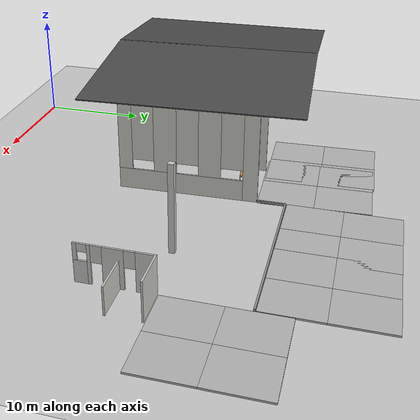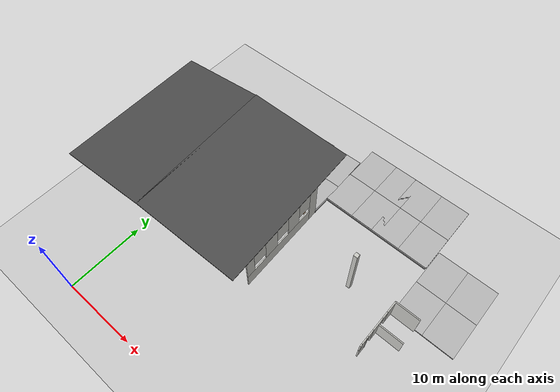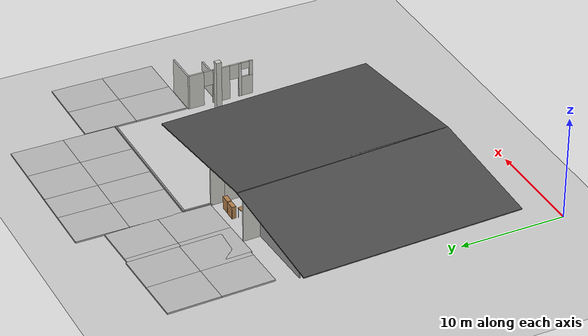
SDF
<sdf version="1.7">
 <world name="default">
  <model name="ground_plane">
   <static>1</static>
   <link name="link">
    <collision name="collision">
     <geometry><plane><normal>0 0 1</normal><size>100 100</size></plane></geometry>
     <surface><friction><ode><mu>100</mu><mu2>50</mu2></ode></friction></surface>
    </collision>
    <visual name="visual">
     <cast_shadows>0</cast_shadows>
     <geometry><plane><normal>0 0 1</normal><size>100 100</size></plane></geometry>
     <material>
      <script><uri>file://media/materials/scripts/gazebo.material</uri><name>Gazebo/Grey</name></script>
     </material>
    </visual>
   </link>
  </model>
  <model name="vehicle_test1">
   <pose>1.6419 -2.1357 0 0 -0 0</pose>
   <link name="Wall_0">
    <pose>13.4971 22.2982 0 0 -0 -1.53906</pose>
    <visual name="Wall_0_Visual_0">
     <pose>-5.69686 0 4.5 0 -0 0</pose>
     <geometry><box><size>1.36263 0.15 9</size></box></geometry>
     <material>
      <script><uri>file://media/materials/scripts/gazebo.material</uri><name>Gazebo/CeilingTiled</name></script>
      <ambient>1 1 1 1</ambient>
     </material>
     <meta><layer>0</layer></meta>
    </visual>
    <collision name="Wall_0_Collision_0">
     <geometry><box><size>1.36263 0.15 9</size></box></geometry>
     <pose>-5.69686 0 4.5 0 -0 0</pose>
    </collision>
    <visual name="Wall_0_Visual_1">
     <pose>0.681317 0 1 0 -0 0</pose>
     <geometry><box><size>11.3937 0.15 2</size></box></geometry>
     <material>
      <script><uri>file://media/materials/scripts/gazebo.material</uri><name>Gazebo/CeilingTiled</name></script>
      <ambient>1 1 1 1</ambient>
     </material>
     <meta><layer>0</layer></meta>
    </visual>
    <collision name="Wall_0_Collision_1">
     <geometry><box><size>11.3937 0.15 2</size></box></geometry>
     <pose>0.681317 0 1 0 -0 0</pose>
    </collision>
    <visual name="Wall_0_Visual_2">
     <pose>-1.99597 0 5.5 0 -0 0</pose>
     <geometry><box><size>2.03913 0.15 7</size></box></geometry>
     <material>
      <script><uri>file://media/materials/scripts/gazebo.material</uri><name>Gazebo/CeilingTiled</name></script>
      <ambient>1 1 1 1</ambient>
     </material>
     <meta><layer>0</layer></meta>
    </visual>
    <collision name="Wall_0_Collision_2">
     <geometry><box><size>2.03913 0.15 7</size></box></geometry>
     <pose>-1.99597 0 5.5 0 -0 0</pose>
    </collision>
    <visual name="Wall_0_Visual_3">
     <pose>2.07219 0 5.5 0 -0 0</pose>
     <geometry><box><size>2.09719 0.15 7</size></box></geometry>
     <material>
      <script><uri>file://media/materials/scripts/gazebo.material</uri><name>Gazebo/CeilingTiled</name></script>
      <ambient>1 1 1 1</ambient>
     </material>
     <meta><layer>0</layer></meta>
    </visual>
    <collision name="Wall_0_Collision_3">
     <geometry><box><size>2.09719 0.15 7</size></box></geometry>
     <pose>2.07219 0 5.5 0 -0 0</pose>
    </collision>
    <visual name="Wall_0_Visual_4">
     <pose>5.74948 0 5.5 0 -0 0</pose>
     <geometry><box><size>1.25739 0.15 7</size></box></geometry>
     <material>
      <script><uri>file://media/materials/scripts/gazebo.material</uri><name>Gazebo/CeilingTiled</name></script>
      <ambient>1 1 1 1</ambient>
     </material>
     <meta><layer>0</layer></meta>
    </visual>
    <collision name="Wall_0_Collision_4">
     <geometry><box><size>1.25739 0.15 7</size></box></geometry>
     <pose>5.74948 0 5.5 0 -0 0</pose>
    </collision>
    <visual name="Wall_0_Visual_5">
     <pose>-4.01554 0 6 0 -0 0</pose>
     <geometry><box><size>2 0.15 6</size></box></geometry>
     <material>
      <script><uri>file://media/materials/scripts/gazebo.material</uri><name>Gazebo/CeilingTiled</name></script>
      <ambient>1 1 1 1</ambient>
     </material>
     <meta><layer>0</layer></meta>
    </visual>
    <collision name="Wall_0_Collision_5">
     <geometry><box><size>2 0.15 6</size></box></geometry>
     <pose>-4.01554 0 6 0 -0 0</pose>
    </collision>
    <visual name="Wall_0_Visual_6">
     <pose>0.023594 0 6 0 -0 0</pose>
     <geometry><box><size>2 0.15 6</size></box></geometry>
     <material>
      <script><uri>file://media/materials/scripts/gazebo.material</uri><name>Gazebo/CeilingTiled</name></script>
      <ambient>1 1 1 1</ambient>
     </material>
     <meta><layer>0</layer></meta>
    </visual>
    <collision name="Wall_0_Collision_6">
     <geometry><box><size>2 0.15 6</size></box></geometry>
     <pose>0.023594 0 6 0 -0 0</pose>
    </collision>
    <visual name="Wall_0_Visual_7">
     <pose>4.12079 0 6 0 -0 0</pose>
     <geometry><box><size>2 0.15 6</size></box></geometry>
     <material>
      <script><uri>file://media/materials/scripts/gazebo.material</uri><name>Gazebo/CeilingTiled</name></script>
      <ambient>1 1 1 1</ambient>
     </material>
     <meta><layer>0</layer></meta>
    </visual>
    <collision name="Wall_0_Collision_7">
     <geometry><box><size>2 0.15 6</size></box></geometry>
     <pose>4.12079 0 6 0 -0 0</pose>
    </collision>
   </link>
   <link name="Wall_45">
    <collision name="Wall_45_Collision">
     <geometry><box><size>0.51 0.5 8</size></box></geometry>
     <pose>0 0 4 0 -0 0</pose>
    </collision>
    <visual name="Wall_45_Visual">
     <pose>0 0 4 0 -0 0</pose>
     <geometry><box><size>0.51 0.5 8</size></box></geometry>
     <material>
      <script><uri>file://media/materials/scripts/gazebo.material</uri><name>Gazebo/CeilingTiled</name></script>
      <ambient>1 1 1 1</ambient>
     </material>
     <meta><layer>0</layer></meta>
    </visual>
    <pose>22.6591 23.5312 0 0 -0 -1.5708</pose>
   </link>
   <link name="Wall_79">
    <pose>7.4221 22.1092 0 0 -0 1.60295</pose>
    <visual name="Wall_79_Visual_0">
     <pose>-4.87221 0 4.35 0 -0 0</pose>
     <geometry><box><size>2.91204 0.15 8.7</size></box></geometry>
     <material>
      <script><uri>file://media/materials/scripts/gazebo.material</uri><name>Gazebo/CeilingTiled</name></script>
      <ambient>1 1 1 1</ambient>
     </material>
     <meta><layer>0</layer></meta>
    </visual>
    <collision name="Wall_79_Collision_0">
     <geometry><box><size>2.91204 0.15 8.7</size></box></geometry>
     <pose>-4.87221 0 4.35 0 -0 0</pose>
    </collision>
    <visual name="Wall_79_Visual_1">
     <pose>5.2833 0 4.35 0 -0 0</pose>
     <geometry><box><size>2.08986 0.15 8.7</size></box></geometry>
     <material>
      <script><uri>file://media/materials/scripts/gazebo.material</uri><name>Gazebo/CeilingTiled</name></script>
      <ambient>1 1 1 1</ambient>
     </material>
     <meta><layer>0</layer></meta>
    </visual>
    <collision name="Wall_79_Collision_1">
     <geometry><box><size>2.08986 0.15 8.7</size></box></geometry>
     <pose>5.2833 0 4.35 0 -0 0</pose>
    </collision>
    <visual name="Wall_79_Visual_2">
     <pose>-0.038905 0 2.5 0 -0 0</pose>
     <geometry><box><size>6.75456 0.15 5</size></box></geometry>
     <material>
      <script><uri>file://media/materials/scripts/gazebo.material</uri><name>Gazebo/CeilingTiled</name></script>
      <ambient>1 1 1 1</ambient>
     </material>
     <meta><layer>0</layer></meta>
    </visual>
    <collision name="Wall_79_Collision_2">
     <geometry><box><size>6.75456 0.15 5</size></box></geometry>
     <pose>-0.038905 0 2.5 0 -0 0</pose>
    </collision>
    <visual name="Wall_79_Visual_3">
     <pose>3.78838 0 0 0 -0 0</pose>
     <geometry><box><size>0.9 0.15 0</size></box></geometry>
     <material>
      <script><uri>file://media/materials/scripts/gazebo.material</uri><name>Gazebo/CeilingTiled</name></script>
      <ambient>1 1 1 1</ambient>
     </material>
     <meta><layer>0</layer></meta>
    </visual>
    <collision name="Wall_79_Collision_3">
     <geometry><box><size>0.9 0.15 0</size></box></geometry>
     <pose>3.78838 0 0 0 -0 0</pose>
    </collision>
    <visual name="Wall_79_Visual_4">
     <pose>3.78838 0 5.35 0 -0 0</pose>
     <geometry><box><size>0.9 0.15 6.7</size></box></geometry>
     <material>
      <script><uri>file://media/materials/scripts/gazebo.material</uri><name>Gazebo/CeilingTiled</name></script>
      <ambient>1 1 1 1</ambient>
     </material>
     <meta><layer>0</layer></meta>
    </visual>
    <collision name="Wall_79_Collision_4">
     <geometry><box><size>0.9 0.15 6.7</size></box></geometry>
     <pose>3.78838 0 5.35 0 -0 0</pose>
    </collision>
    <visual name="Wall_79_Visual_5">
     <pose>-0.34308 0 6.85 0 -0 0</pose>
     <geometry><box><size>2.14621 0.15 3.7</size></box></geometry>
     <material>
      <script><uri>file://media/materials/scripts/gazebo.material</uri><name>Gazebo/CeilingTiled</name></script>
      <ambient>1 1 1 1</ambient>
     </material>
     <meta><layer>0</layer></meta>
    </visual>
    <collision name="Wall_79_Collision_5">
     <geometry><box><size>2.14621 0.15 3.7</size></box></geometry>
     <pose>-0.34308 0 6.85 0 -0 0</pose>
    </collision>
    <visual name="Wall_79_Visual_6">
     <pose>3.0342 0 6.85 0 -0 0</pose>
     <geometry><box><size>0.608351 0.15 3.7</size></box></geometry>
     <material>
      <script><uri>file://media/materials/scripts/gazebo.material</uri><name>Gazebo/CeilingTiled</name></script>
      <ambient>1 1 1 1</ambient>
     </material>
     <meta><layer>0</layer></meta>
    </visual>
    <collision name="Wall_79_Collision_6">
     <geometry><box><size>0.608351 0.15 3.7</size></box></geometry>
     <pose>3.0342 0 6.85 0 -0 0</pose>
    </collision>
    <visual name="Wall_79_Visual_7">
     <pose>-2.41619 0 7.85 0 -0 0</pose>
     <geometry><box><size>2 0.15 1.7</size></box></geometry>
     <material>
      <script><uri>file://media/materials/scripts/gazebo.material</uri><name>Gazebo/CeilingTiled</name></script>
      <ambient>1 1 1 1</ambient>
     </material>
     <meta><layer>0</layer></meta>
    </visual>
    <collision name="Wall_79_Collision_7">
     <geometry><box><size>2 0.15 1.7</size></box></geometry>
     <pose>-2.41619 0 7.85 0 -0 0</pose>
    </collision>
    <visual name="Wall_79_Visual_8">
     <pose>1.73003 0 7.85 0 -0 0</pose>
     <geometry><box><size>2 0.15 1.7</size></box></geometry>
     <material>
      <script><uri>file://media/materials/scripts/gazebo.material</uri><name>Gazebo/CeilingTiled</name></script>
      <ambient>1 1 1 1</ambient>
     </material>
     <meta><layer>0</layer></meta>
    </visual>
    <collision name="Wall_79_Collision_8">
     <geometry><box><size>2 0.15 1.7</size></box></geometry>
     <pose>1.73003 0 7.85 0 -0 0</pose>
    </collision>
   </link>
   <link name="Wall_82">
    <collision name="Wall_82_Collision">
     <geometry><box><size>7.05652 0.15 5</size></box></geometry>
     <pose>0 0 2.5 0 -0 0</pose>
    </collision>
    <visual name="Wall_82_Visual">
     <pose>0 0 2.5 0 -0 0</pose>
     <geometry><box><size>7.05652 0.15 5</size></box></geometry>
     <material>
      <script><uri>file://media/materials/scripts/gazebo.material</uri><name>Gazebo/Grey</name></script>
      <ambient>1 1 1 1</ambient>
     </material>
     <meta><layer>0</layer></meta>
    </visual>
    <pose>3.8461 26.5822 0 0 -0 -3.09814</pose>
   </link>
   <link name="Wall_86">
    <pose>28.2431 20.7862 0 0 -0 -1.5708</pose>
    <visual name="Wall_86_Visual_0">
     <pose>-2.44512 0 1.75 0 -0 0</pose>
     <geometry><box><size>1.60975 0.15 3.5</size></box></geometry>
     <material>
      <script><uri>file://media/materials/scripts/gazebo.material</uri><name>Gazebo/CeilingTiled</name></script>
      <ambient>0.760784 0.662745 0.627451 1</ambient>
     </material>
     <meta><layer>0</layer></meta>
    </visual>
    <collision name="Wall_86_Collision_0">
     <geometry><box><size>1.60975 0.15 3.5</size></box></geometry>
     <pose>-2.44512 0 1.75 0 -0 0</pose>
    </collision>
    <visual name="Wall_86_Visual_1">
     <pose>0.10383 0 1.75 0 -0 0</pose>
     <geometry><box><size>1.68816 0.15 3.5</size></box></geometry>
     <material>
      <script><uri>file://media/materials/scripts/gazebo.material</uri><name>Gazebo/CeilingTiled</name></script>
      <ambient>0.760784 0.662745 0.627451 1</ambient>
     </material>
     <meta><layer>0</layer></meta>
    </visual>
    <collision name="Wall_86_Collision_1">
     <geometry><box><size>1.68816 0.15 3.5</size></box></geometry>
     <pose>0.10383 0 1.75 0 -0 0</pose>
    </collision>
    <visual name="Wall_86_Visual_2">
     <pose>1.98308 0 1.75 0 -0 0</pose>
     <geometry><box><size>0.270348 0.15 3.5</size></box></geometry>
     <material>
      <script><uri>file://media/materials/scripts/gazebo.material</uri><name>Gazebo/CeilingTiled</name></script>
      <ambient>0.760784 0.662745 0.627451 1</ambient>
     </material>
     <meta><layer>0</layer></meta>
    </visual>
    <collision name="Wall_86_Collision_2">
     <geometry><box><size>0.270348 0.15 3.5</size></box></geometry>
     <pose>1.98308 0 1.75 0 -0 0</pose>
    </collision>
    <visual name="Wall_86_Visual_3">
     <pose>2.68413 0 1 0 -0 0</pose>
     <geometry><box><size>1.13174 0.15 2</size></box></geometry>
     <material>
      <script><uri>file://media/materials/scripts/gazebo.material</uri><name>Gazebo/CeilingTiled</name></script>
      <ambient>0.760784 0.662745 0.627451 1</ambient>
     </material>
     <meta><layer>0</layer></meta>
    </visual>
    <collision name="Wall_86_Collision_3">
     <geometry><box><size>1.13174 0.15 2</size></box></geometry>
     <pose>2.68413 0 1 0 -0 0</pose>
    </collision>
    <visual name="Wall_86_Visual_4">
     <pose>-1.19025 0 2.75 0 -0 0</pose>
     <geometry><box><size>0.9 0.15 1.5</size></box></geometry>
     <material>
      <script><uri>file://media/materials/scripts/gazebo.material</uri><name>Gazebo/CeilingTiled</name></script>
      <ambient>0.760784 0.662745 0.627451 1</ambient>
     </material>
     <meta><layer>0</layer></meta>
    </visual>
    <collision name="Wall_86_Collision_4">
     <geometry><box><size>0.9 0.15 1.5</size></box></geometry>
     <pose>-1.19025 0 2.75 0 -0 0</pose>
    </collision>
    <visual name="Wall_86_Visual_5">
     <pose>1.39791 0 2.75 0 -0 0</pose>
     <geometry><box><size>0.9 0.15 1.5</size></box></geometry>
     <material>
      <script><uri>file://media/materials/scripts/gazebo.material</uri><name>Gazebo/CeilingTiled</name></script>
      <ambient>0.760784 0.662745 0.627451 1</ambient>
     </material>
     <meta><layer>0</layer></meta>
    </visual>
    <collision name="Wall_86_Collision_5">
     <geometry><box><size>0.9 0.15 1.5</size></box></geometry>
     <pose>1.39791 0 2.75 0 -0 0</pose>
    </collision>
    <visual name="Wall_86_Visual_6">
     <pose>3.08413 0 2.75 0 -0 0</pose>
     <geometry><box><size>0.331741 0.15 1.5</size></box></geometry>
     <material>
      <script><uri>file://media/materials/scripts/gazebo.material</uri><name>Gazebo/CeilingTiled</name></script>
      <ambient>0.760784 0.662745 0.627451 1</ambient>
     </material>
     <meta><layer>0</layer></meta>
    </visual>
    <collision name="Wall_86_Collision_6">
     <geometry><box><size>0.331741 0.15 1.5</size></box></geometry>
     <pose>3.08413 0 2.75 0 -0 0</pose>
    </collision>
    <visual name="Wall_86_Visual_7">
     <pose>2.51826 0 3.15 0 -0 0</pose>
     <geometry><box><size>0.8 0.15 0.7</size></box></geometry>
     <material>
      <script><uri>file://media/materials/scripts/gazebo.material</uri><name>Gazebo/CeilingTiled</name></script>
      <ambient>0.760784 0.662745 0.627451 1</ambient>
     </material>
     <meta><layer>0</layer></meta>
    </visual>
    <collision name="Wall_86_Collision_7">
     <geometry><box><size>0.8 0.15 0.7</size></box></geometry>
     <pose>2.51826 0 3.15 0 -0 0</pose>
    </collision>
   </link>
   <link name="Wall_89">
    <collision name="Wall_89_Collision">
     <geometry><box><size>3.25 0.15 3.5</size></box></geometry>
     <pose>0 0 1.75 0 -0 0</pose>
    </collision>
    <visual name="Wall_89_Visual">
     <pose>0 0 1.75 0 -0 0</pose>
     <geometry><box><size>3.25 0.15 3.5</size></box></geometry>
     <material>
      <script><uri>file://media/materials/scripts/gazebo.material</uri><name>Gazebo/CeilingTiled</name></script>
      <ambient>0.760784 0.662745 0.627451 1</ambient>
     </material>
     <meta><layer>0</layer></meta>
    </visual>
    <pose>29.7931 23.9612 0 0 -0 3.14159</pose>
   </link>
   <link name="Wall_91">
    <collision name="Wall_91_Collision">
     <geometry><box><size>3.25 0.15 2.5</size></box></geometry>
     <pose>0 0 1.25 0 -0 0</pose>
    </collision>
    <visual name="Wall_91_Visual">
     <pose>0 0 1.25 0 -0 0</pose>
     <geometry><box><size>3.25 0.15 2.5</size></box></geometry>
     <material>
      <script><uri>file://media/materials/scripts/gazebo.material</uri><name>Gazebo/CeilingTiled</name></script>
      <ambient>1 1 1 1</ambient>
     </material>
     <meta><layer>0</layer></meta>
    </visual>
    <pose>29.7996 21.0895 0 0 -0 0</pose>
   </link>
   <link name="Wall_96">
    <collision name="Wall_96_Collision">
     <geometry><box><size>2.75 0.15 0.2</size></box></geometry>
     <pose>0 0 0.1 0 -0 0</pose>
    </collision>
    <visual name="Wall_96_Visual">
     <pose>0 0 0.1 0 -0 0</pose>
     <geometry><box><size>2.75 0.15 0.2</size></box></geometry>
     <material>
      <script><uri>file://media/materials/scripts/gazebo.material</uri><name>Gazebo/Grey</name></script>
      <ambient>1 1 1 1</ambient>
     </material>
     <meta><layer>0</layer></meta>
    </visual>
    <pose>13.2971 29.8982 0 0 -0 1.5708</pose>
   </link>
   <link name="Wall_97">
    <collision name="Wall_97_Collision">
     <geometry><box><size>15 0.15 0.2</size></box></geometry>
     <pose>0 0 0.1 0 -0 0</pose>
    </collision>
    <visual name="Wall_97_Visual">
     <pose>0 0 0.1 0 -0 0</pose>
     <geometry><box><size>15 0.15 0.2</size></box></geometry>
     <material>
      <script><uri>file://media/materials/scripts/gazebo.material</uri><name>Gazebo/Grey</name></script>
      <ambient>1 1 1 1</ambient>
     </material>
     <meta><layer>0</layer></meta>
    </visual>
    <pose>20.7221 31.1982 0 0 -0 0</pose>
   </link>
   <static>1</static>
  </model>
  <model name="bookshelf">
   <static>1</static>
   <link name="link">
    <inertial><mass>1</mass></inertial>
    <collision name="back">
     <pose>0 0.005 0.6 0 -0 0</pose>
     <geometry><box><size>0.9 0.01 1.2</size></box></geometry>
    </collision>
    <visual name="visual1">
     <pose>0 0.005 0.6 0 -0 0</pose>
     <geometry><box><size>0.9 0.01 1.2</size></box></geometry>
     <material>
      <script><uri>file://media/materials/scripts/gazebo.material</uri><name>Gazebo/Wood</name></script>
     </material>
    </visual>
    <collision name="left_side">
     <pose>0.45 -0.195 0.6 0 -0 0</pose>
     <geometry><box><size>0.02 0.4 1.2</size></box></geometry>
    </collision>
    <visual name="visual2">
     <pose>0.45 -0.195 0.6 0 -0 0</pose>
     <geometry><box><size>0.02 0.4 1.2</size></box></geometry>
     <material>
      <script><uri>file://media/materials/scripts/gazebo.material</uri><name>Gazebo/Wood</name></script>
     </material>
    </visual>
    <collision name="right_side">
     <pose>-0.45 -0.195 0.6 0 -0 0</pose>
     <geometry><box><size>0.02 0.4 1.2</size></box></geometry>
    </collision>
    <visual name="visual3">
     <pose>-0.45 -0.195 0.6 0 -0 0</pose>
     <geometry><box><size>0.02 0.4 1.2</size></box></geometry>
     <material>
      <script><uri>file://media/materials/scripts/gazebo.material</uri><name>Gazebo/Wood</name></script>
     </material>
    </visual>
    <collision name="bottom">
     <pose>0 -0.195 0.03 0 -0 0</pose>
     <geometry><box><size>0.88 0.4 0.06</size></box></geometry>
    </collision>
    <visual name="visual4">
     <pose>0 -0.195 0.03 0 -0 0</pose>
     <geometry><box><size>0.88 0.4 0.06</size></box></geometry>
     <material>
      <script><uri>file://media/materials/scripts/gazebo.material</uri><name>Gazebo/Wood</name></script>
     </material>
    </visual>
    <collision name="top">
     <pose>0 -0.195 1.19 0 -0 0</pose>
     <geometry><box><size>0.88 0.4 0.02</size></box></geometry>
    </collision>
    <visual name="visual5">
     <pose>0 -0.195 1.19 0 -0 0</pose>
     <geometry><box><size>0.88 0.4 0.02</size></box></geometry>
     <material>
      <script><uri>file://media/materials/scripts/gazebo.material</uri><name>Gazebo/Wood</name></script>
     </material>
    </visual>
    <collision name="low_shelf">
     <pose>0 -0.195 0.43 0 -0 0</pose>
     <geometry><box><size>0.88 0.4 0.02</size></box></geometry>
    </collision>
    <visual name="visual6">
     <pose>0 -0.195 0.43 0 -0 0</pose>
     <geometry><box><size>0.88 0.4 0.02</size></box></geometry>
     <material>
      <script><uri>file://media/materials/scripts/gazebo.material</uri><name>Gazebo/Wood</name></script>
     </material>
    </visual>
    <collision name="high_shelf">
     <pose>0 -0.195 0.8 0 -0 0</pose>
     <geometry><box><size>0.88 0.4 0.02</size></box></geometry>
    </collision>
    <visual name="visual7">
     <pose>0 -0.195 0.8 0 -0 0</pose>
     <geometry><box><size>0.88 0.4 0.02</size></box></geometry>
     <material>
      <script><uri>file://media/materials/scripts/gazebo.material</uri><name>Gazebo/Wood</name></script>
     </material>
    </visual>
   </link>
   <pose>12.6702 25.7506 0 0 -0 0</pose>
  </model>
  <model name="bookshelf_0">
   <static>1</static>
   <link name="link">
    <inertial><mass>1</mass></inertial>
    <collision name="back">
     <pose>0 0.005 0.6 0 -0 0</pose>
     <geometry><box><size>0.9 0.01 1.2</size></box></geometry>
    </collision>
    <visual name="visual1">
     <pose>0 0.005 0.6 0 -0 0</pose>
     <geometry><box><size>0.9 0.01 1.2</size></box></geometry>
     <material>
      <script><uri>file://media/materials/scripts/gazebo.material</uri><name>Gazebo/Wood</name></script>
     </material>
    </visual>
    <collision name="left_side">
     <pose>0.45 -0.195 0.6 0 -0 0</pose>
     <geometry><box><size>0.02 0.4 1.2</size></box></geometry>
    </collision>
    <visual name="visual2">
     <pose>0.45 -0.195 0.6 0 -0 0</pose>
     <geometry><box><size>0.02 0.4 1.2</size></box></geometry>
     <material>
      <script><uri>file://media/materials/scripts/gazebo.material</uri><name>Gazebo/Wood</name></script>
     </material>
    </visual>
    <collision name="right_side">
     <pose>-0.45 -0.195 0.6 0 -0 0</pose>
     <geometry><box><size>0.02 0.4 1.2</size></box></geometry>
    </collision>
    <visual name="visual3">
     <pose>-0.45 -0.195 0.6 0 -0 0</pose>
     <geometry><box><size>0.02 0.4 1.2</size></box></geometry>
     <material>
      <script><uri>file://media/materials/scripts/gazebo.material</uri><name>Gazebo/Wood</name></script>
     </material>
    </visual>
    <collision name="bottom">
     <pose>0 -0.195 0.03 0 -0 0</pose>
     <geometry><box><size>0.88 0.4 0.06</size></box></geometry>
    </collision>
    <visual name="visual4">
     <pose>0 -0.195 0.03 0 -0 0</pose>
     <geometry><box><size>0.88 0.4 0.06</size></box></geometry>
     <material>
      <script><uri>file://media/materials/scripts/gazebo.material</uri><name>Gazebo/Wood</name></script>
     </material>
    </visual>
    <collision name="top">
     <pose>0 -0.195 1.19 0 -0 0</pose>
     <geometry><box><size>0.88 0.4 0.02</size></box></geometry>
    </collision>
    <visual name="visual5">
     <pose>0 -0.195 1.19 0 -0 0</pose>
     <geometry><box><size>0.88 0.4 0.02</size></box></geometry>
     <material>
      <script><uri>file://media/materials/scripts/gazebo.material</uri><name>Gazebo/Wood</name></script>
     </material>
    </visual>
    <collision name="low_shelf">
     <pose>0 -0.195 0.43 0 -0 0</pose>
     <geometry><box><size>0.88 0.4 0.02</size></box></geometry>
    </collision>
    <visual name="visual6">
     <pose>0 -0.195 0.43 0 -0 0</pose>
     <geometry><box><size>0.88 0.4 0.02</size></box></geometry>
     <material>
      <script><uri>file://media/materials/scripts/gazebo.material</uri><name>Gazebo/Wood</name></script>
     </material>
    </visual>
    <collision name="high_shelf">
     <pose>0 -0.195 0.8 0 -0 0</pose>
     <geometry><box><size>0.88 0.4 0.02</size></box></geometry>
    </collision>
    <visual name="visual7">
     <pose>0 -0.195 0.8 0 -0 0</pose>
     <geometry><box><size>0.88 0.4 0.02</size></box></geometry>
     <material>
      <script><uri>file://media/materials/scripts/gazebo.material</uri><name>Gazebo/Wood</name></script>
     </material>
    </visual>
   </link>
   <pose>13.639 25.7261 0 0 -0 0</pose>
  </model>
  <model name="mud_box_5">
   <static>1</static>
   <link name="link">
    <collision name="collision"><geometry><box><size>8 10 0.2</size></box></geometry></collision>
    <visual name="visual_1">
     <pose>-2 2.5 0 0 -0 0</pose>
     <cast_shadows>0</cast_shadows>
     <geometry><box><size>4 5 0.2</size></box></geometry>
     <material>
      <script>
       <uri>model://mud_box/materials/scripts</uri>
       <uri>model://mud_box/materials/textures</uri>
       <name>vrc/mud</name>
      </script>
     </material>
    </visual>
    <visual name="visual_2">
     <pose>2 2.5 0 0 -0 0</pose>
     <cast_shadows>0</cast_shadows>
     <geometry><box><size>4 5 0.2</size></box></geometry>
     <material>
      <script>
       <uri>model://mud_box/materials/scripts</uri>
       <uri>model://mud_box/materials/textures</uri>
       <name>vrc/mud</name>
      </script>
     </material>
    </visual>
    <visual name="visual_3">
     <pose>2 -2.5 0 0 -0 0</pose>
     <cast_shadows>0</cast_shadows>
     <geometry><box><size>4 5 0.2</size></box></geometry>
     <material>
      <script>
       <uri>model://mud_box/materials/scripts</uri>
       <uri>model://mud_box/materials/textures</uri>
       <name>vrc/mud</name>
      </script>
     </material>
    </visual>
    <visual name="visual_4">
     <pose>-2 -2.5 0 0 -0 0</pose>
     <cast_shadows>0</cast_shadows>
     <geometry><box><size>4 5 0.2</size></box></geometry>
     <material>
      <script>
       <uri>model://mud_box/materials/scripts</uri>
       <uri>model://mud_box/materials/textures</uri>
       <name>vrc/mud</name>
      </script>
     </material>
    </visual>
   </link>
   <pose>18.8329 34.1966 0 0 -0 0</pose>
  </model>
  <model name="mud_box_6">
   <static>1</static>
   <link name="link">
    <collision name="collision"><geometry><box><size>8 10 0.2</size></box></geometry></collision>
    <visual name="visual_1">
     <pose>-2 2.5 0 0 -0 0</pose>
     <cast_shadows>0</cast_shadows>
     <geometry><box><size>4 5 0.2</size></box></geometry>
     <material>
      <script>
       <uri>model://mud_box/materials/scripts</uri>
       <uri>model://mud_box/materials/textures</uri>
       <name>vrc/mud</name>
      </script>
     </material>
    </visual>
    <visual name="visual_2">
     <pose>2 2.5 0 0 -0 0</pose>
     <cast_shadows>0</cast_shadows>
     <geometry><box><size>4 5 0.2</size></box></geometry>
     <material>
      <script>
       <uri>model://mud_box/materials/scripts</uri>
       <uri>model://mud_box/materials/textures</uri>
       <name>vrc/mud</name>
      </script>
     </material>
    </visual>
    <visual name="visual_3">
     <pose>2 -2.5 0 0 -0 0</pose>
     <cast_shadows>0</cast_shadows>
     <geometry><box><size>4 5 0.2</size></box></geometry>
     <material>
      <script>
       <uri>model://mud_box/materials/scripts</uri>
       <uri>model://mud_box/materials/textures</uri>
       <name>vrc/mud</name>
      </script>
     </material>
    </visual>
    <visual name="visual_4">
     <pose>-2 -2.5 0 0 -0 0</pose>
     <cast_shadows>0</cast_shadows>
     <geometry><box><size>4 5 0.2</size></box></geometry>
     <material>
      <script>
       <uri>model://mud_box/materials/scripts</uri>
       <uri>model://mud_box/materials/textures</uri>
       <name>vrc/mud</name>
      </script>
     </material>
    </visual>
   </link>
   <pose>25.9076 34.1819 0 0 -0 0</pose>
  </model>
  <model name="mud_box_7">
   <static>1</static>
   <link name="link">
    <collision name="collision"><geometry><box><size>8 10 0.2</size></box></geometry></collision>
    <visual name="visual_1">
     <pose>-2 2.5 0 0 -0 0</pose>
     <cast_shadows>0</cast_shadows>
     <geometry><box><size>4 5 0.2</size></box></geometry>
     <material>
      <script>
       <uri>model://mud_box/materials/scripts</uri>
       <uri>model://mud_box/materials/textures</uri>
       <name>vrc/mud</name>
      </script>
     </material>
    </visual>
    <visual name="visual_2">
     <pose>2 2.5 0 0 -0 0</pose>
     <cast_shadows>0</cast_shadows>
     <geometry><box><size>4 5 0.2</size></box></geometry>
     <material>
      <script>
       <uri>model://mud_box/materials/scripts</uri>
       <uri>model://mud_box/materials/textures</uri>
       <name>vrc/mud</name>
      </script>
     </material>
    </visual>
    <visual name="visual_3">
     <pose>2 -2.5 0 0 -0 0</pose>
     <cast_shadows>0</cast_shadows>
     <geometry><box><size>4 5 0.2</size></box></geometry>
     <material>
      <script>
       <uri>model://mud_box/materials/scripts</uri>
       <uri>model://mud_box/materials/textures</uri>
       <name>vrc/mud</name>
      </script>
     </material>
    </visual>
    <visual name="visual_4">
     <pose>-2 -2.5 0 0 -0 0</pose>
     <cast_shadows>0</cast_shadows>
     <geometry><box><size>4 5 0.2</size></box></geometry>
     <material>
      <script>
       <uri>model://mud_box/materials/scripts</uri>
       <uri>model://mud_box/materials/textures</uri>
       <name>vrc/mud</name>
      </script>
     </material>
    </visual>
   </link>
   <pose>33.9861 26.9939 0 0 -0 0</pose>
  </model>
  <model name="mud_box_9">
   <static>1</static>
   <link name="link">
    <collision name="collision"><geometry><box><size>8 10 0.2</size></box></geometry></collision>
    <visual name="visual_1">
     <pose>-2 2.5 0 0 -0 0</pose>
     <cast_shadows>0</cast_shadows>
     <geometry><box><size>4 5 0.2</size></box></geometry>
     <material>
      <script>
       <uri>model://mud_box/materials/scripts</uri>
       <uri>model://mud_box/materials/textures</uri>
       <name>vrc/mud</name>
      </script>
     </material>
    </visual>
    <visual name="visual_2">
     <pose>2 2.5 0 0 -0 0</pose>
     <cast_shadows>0</cast_shadows>
     <geometry><box><size>4 5 0.2</size></box></geometry>
     <material>
      <script>
       <uri>model://mud_box/materials/scripts</uri>
       <uri>model://mud_box/materials/textures</uri>
       <name>vrc/mud</name>
      </script>
     </material>
    </visual>
    <visual name="visual_3">
     <pose>2 -2.5 0 0 -0 0</pose>
     <cast_shadows>0</cast_shadows>
     <geometry><box><size>4 5 0.2</size></box></geometry>
     <material>
      <script>
       <uri>model://mud_box/materials/scripts</uri>
       <uri>model://mud_box/materials/textures</uri>
       <name>vrc/mud</name>
      </script>
     </material>
    </visual>
    <visual name="visual_4">
     <pose>-2 -2.5 0 0 -0 0</pose>
     <cast_shadows>0</cast_shadows>
     <geometry><box><size>4 5 0.2</size></box></geometry>
     <material>
      <script>
       <uri>model://mud_box/materials/scripts</uri>
       <uri>model://mud_box/materials/textures</uri>
       <name>vrc/mud</name>
      </script>
     </material>
    </visual>
   </link>
   <pose>6.37206 31.4122 0 0 -0 0.031555</pose>
  </model>
  <model name="mud_box_9_clone">
   <static>1</static>
   <link name="link">
    <collision name="collision"><geometry><box><size>8 10 0.2</size></box></geometry></collision>
    <visual name="visual_1">
     <pose>-2 2.5 0 0 -0 0</pose>
     <cast_shadows>0</cast_shadows>
     <geometry><box><size>4 5 0.2</size></box></geometry>
     <material>
      <script>
       <uri>model://mud_box/materials/scripts</uri>
       <uri>model://mud_box/materials/textures</uri>
       <name>vrc/mud</name>
      </script>
     </material>
    </visual>
    <visual name="visual_2">
     <pose>2 2.5 0 0 -0 0</pose>
     <cast_shadows>0</cast_shadows>
     <geometry><box><size>4 5 0.2</size></box></geometry>
     <material>
      <script>
       <uri>model://mud_box/materials/scripts</uri>
       <uri>model://mud_box/materials/textures</uri>
       <name>vrc/mud</name>
      </script>
     </material>
    </visual>
    <visual name="visual_3">
     <pose>2 -2.5 0 0 -0 0</pose>
     <cast_shadows>0</cast_shadows>
     <geometry><box><size>4 5 0.2</size></box></geometry>
     <material>
      <script>
       <uri>model://mud_box/materials/scripts</uri>
       <uri>model://mud_box/materials/textures</uri>
       <name>vrc/mud</name>
      </script>
     </material>
    </visual>
    <visual name="visual_4">
     <pose>-2 -2.5 0 0 -0 0</pose>
     <cast_shadows>0</cast_shadows>
     <geometry><box><size>4 5 0.2</size></box></geometry>
     <material>
      <script>
       <uri>model://mud_box/materials/scripts</uri>
       <uri>model://mud_box/materials/textures</uri>
       <name>vrc/mud</name>
      </script>
     </material>
    </visual>
   </link>
   <pose>10.8708 31.4294 0 0 -0 0.031555</pose>
  </model>
  <model name="table_3">
   <static>1</static>
   <link name="link">
    <collision name="surface">
     <pose>0 0 1 0 -0 0</pose>
     <geometry><box><size>1.5 0.8 0.03</size></box></geometry>
     <surface><friction><ode><mu>0.6</mu><mu2>0.6</mu2></ode></friction></surface>
    </collision>
    <visual name="visual1">
     <pose>0 0 1 0 -0 0</pose>
     <geometry><box><size>1.5 0.8 0.03</size></box></geometry>
     <material>
      <script><uri>file://media/materials/scripts/gazebo.material</uri><name>Gazebo/Wood</name></script>
     </material>
    </visual>
    <collision name="front_left_leg">
     <pose>0.68 0.38 0.5 0 -0 0</pose>
     <geometry><cylinder><radius>0.02</radius><length>1</length></cylinder></geometry>
    </collision>
    <visual name="front_left_leg">
     <pose>0.68 0.38 0.5 0 -0 0</pose>
     <geometry><cylinder><radius>0.02</radius><length>1</length></cylinder></geometry>
     <material>
      <script><uri>file://media/materials/scripts/gazebo.material</uri><name>Gazebo/Grey</name></script>
     </material>
    </visual>
    <collision name="front_right_leg">
     <pose>0.68 -0.38 0.5 0 -0 0</pose>
     <geometry><cylinder><radius>0.02</radius><length>1</length></cylinder></geometry>
    </collision>
    <visual name="front_right_leg">
     <pose>0.68 -0.38 0.5 0 -0 0</pose>
     <geometry><cylinder><radius>0.02</radius><length>1</length></cylinder></geometry>
     <material>
      <script><uri>file://media/materials/scripts/gazebo.material</uri><name>Gazebo/Grey</name></script>
     </material>
    </visual>
    <collision name="back_right_leg">
     <pose>-0.68 -0.38 0.5 0 -0 0</pose>
     <geometry><cylinder><radius>0.02</radius><length>1</length></cylinder></geometry>
    </collision>
    <visual name="back_right_leg">
     <pose>-0.68 -0.38 0.5 0 -0 0</pose>
     <geometry><cylinder><radius>0.02</radius><length>1</length></cylinder></geometry>
     <material>
      <script><uri>file://media/materials/scripts/gazebo.material</uri><name>Gazebo/Grey</name></script>
     </material>
    </visual>
    <collision name="back_left_leg">
     <pose>-0.68 0.38 0.5 0 -0 0</pose>
     <geometry><cylinder><radius>0.02</radius><length>1</length></cylinder></geometry>
    </collision>
    <visual name="back_left_leg">
     <pose>-0.68 0.38 0.5 0 -0 0</pose>
     <geometry><cylinder><radius>0.02</radius><length>1</length></cylinder></geometry>
     <material>
      <script><uri>file://media/materials/scripts/gazebo.material</uri><name>Gazebo/Grey</name></script>
     </material>
    </visual>
   </link>
   <pose>11.5314 24.7174 0 0 -0 0.101545</pose>
  </model>
  <model name="table_4">
   <static>1</static>
   <link name="link">
    <collision name="surface">
     <pose>0 0 1 0 -0 0</pose>
     <geometry><box><size>1.5 0.8 0.03</size></box></geometry>
     <surface><friction><ode><mu>0.6</mu><mu2>0.6</mu2></ode></friction></surface>
    </collision>
    <visual name="visual1">
     <pose>0 0 1 0 -0 0</pose>
     <geometry><box><size>1.5 0.8 0.03</size></box></geometry>
     <material>
      <script><uri>file://media/materials/scripts/gazebo.material</uri><name>Gazebo/Wood</name></script>
     </material>
    </visual>
    <collision name="front_left_leg">
     <pose>0.68 0.38 0.5 0 -0 0</pose>
     <geometry><cylinder><radius>0.02</radius><length>1</length></cylinder></geometry>
    </collision>
    <visual name="front_left_leg">
     <pose>0.68 0.38 0.5 0 -0 0</pose>
     <geometry><cylinder><radius>0.02</radius><length>1</length></cylinder></geometry>
     <material>
      <script><uri>file://media/materials/scripts/gazebo.material</uri><name>Gazebo/Grey</name></script>
     </material>
    </visual>
    <collision name="front_right_leg">
     <pose>0.68 -0.38 0.5 0 -0 0</pose>
     <geometry><cylinder><radius>0.02</radius><length>1</length></cylinder></geometry>
    </collision>
    <visual name="front_right_leg">
     <pose>0.68 -0.38 0.5 0 -0 0</pose>
     <geometry><cylinder><radius>0.02</radius><length>1</length></cylinder></geometry>
     <material>
      <script><uri>file://media/materials/scripts/gazebo.material</uri><name>Gazebo/Grey</name></script>
     </material>
    </visual>
    <collision name="back_right_leg">
     <pose>-0.68 -0.38 0.5 0 -0 0</pose>
     <geometry><cylinder><radius>0.02</radius><length>1</length></cylinder></geometry>
    </collision>
    <visual name="back_right_leg">
     <pose>-0.68 -0.38 0.5 0 -0 0</pose>
     <geometry><cylinder><radius>0.02</radius><length>1</length></cylinder></geometry>
     <material>
      <script><uri>file://media/materials/scripts/gazebo.material</uri><name>Gazebo/Grey</name></script>
     </material>
    </visual>
    <collision name="back_left_leg">
     <pose>-0.68 0.38 0.5 0 -0 0</pose>
     <geometry><cylinder><radius>0.02</radius><length>1</length></cylinder></geometry>
    </collision>
    <visual name="back_left_leg">
     <pose>-0.68 0.38 0.5 0 -0 0</pose>
     <geometry><cylinder><radius>0.02</radius><length>1</length></cylinder></geometry>
     <material>
      <script><uri>file://media/materials/scripts/gazebo.material</uri><name>Gazebo/Grey</name></script>
     </material>
    </visual>
   </link>
   <pose>9.97555 24.3916 0 0 -0 0.289153</pose>
  </model>
  <model name="asphalt_plane_clone">
   <static>1</static>
   <link name="link">
    <collision name="collision"><geometry><box><size>13.6309 20 0.1</size></box></geometry></collision>
    <visual name="visual">
     <cast_shadows>0</cast_shadows>
     <geometry><box><size>13.6309 20 0.1</size></box></geometry>
     <material>
      <script>
       <uri>model://asphalt_plane/materials/scripts</uri>
       <uri>model://asphalt_plane/materials/textures</uri>
       <name>vrc/asphalt</name>
      </script>
     </material>
    </visual>
   </link>
   <pose>9.63547 20.1696 9.47531 -0.001927 0.079608 0.050551</pose>
  </model>
  <model name="asphalt_plane">
   <static>1</static>
   <link name="link">
    <collision name="collision"><geometry><box><size>11.8707 20 0.1</size></box></geometry></collision>
    <visual name="visual">
     <cast_shadows>0</cast_shadows>
     <geometry><box><size>11.8707 20 0.1</size></box></geometry>
     <material>
      <script>
       <uri>model://asphalt_plane/materials/scripts</uri>
       <uri>model://asphalt_plane/materials/textures</uri>
       <name>vrc/asphalt</name>
      </script>
     </material>
    </visual>
   </link>
   <pose>-2.79925 19.6291 9.44458 -0.004475 -0.093342 0.032301</pose>
  </model>
 </world>
</sdf>
